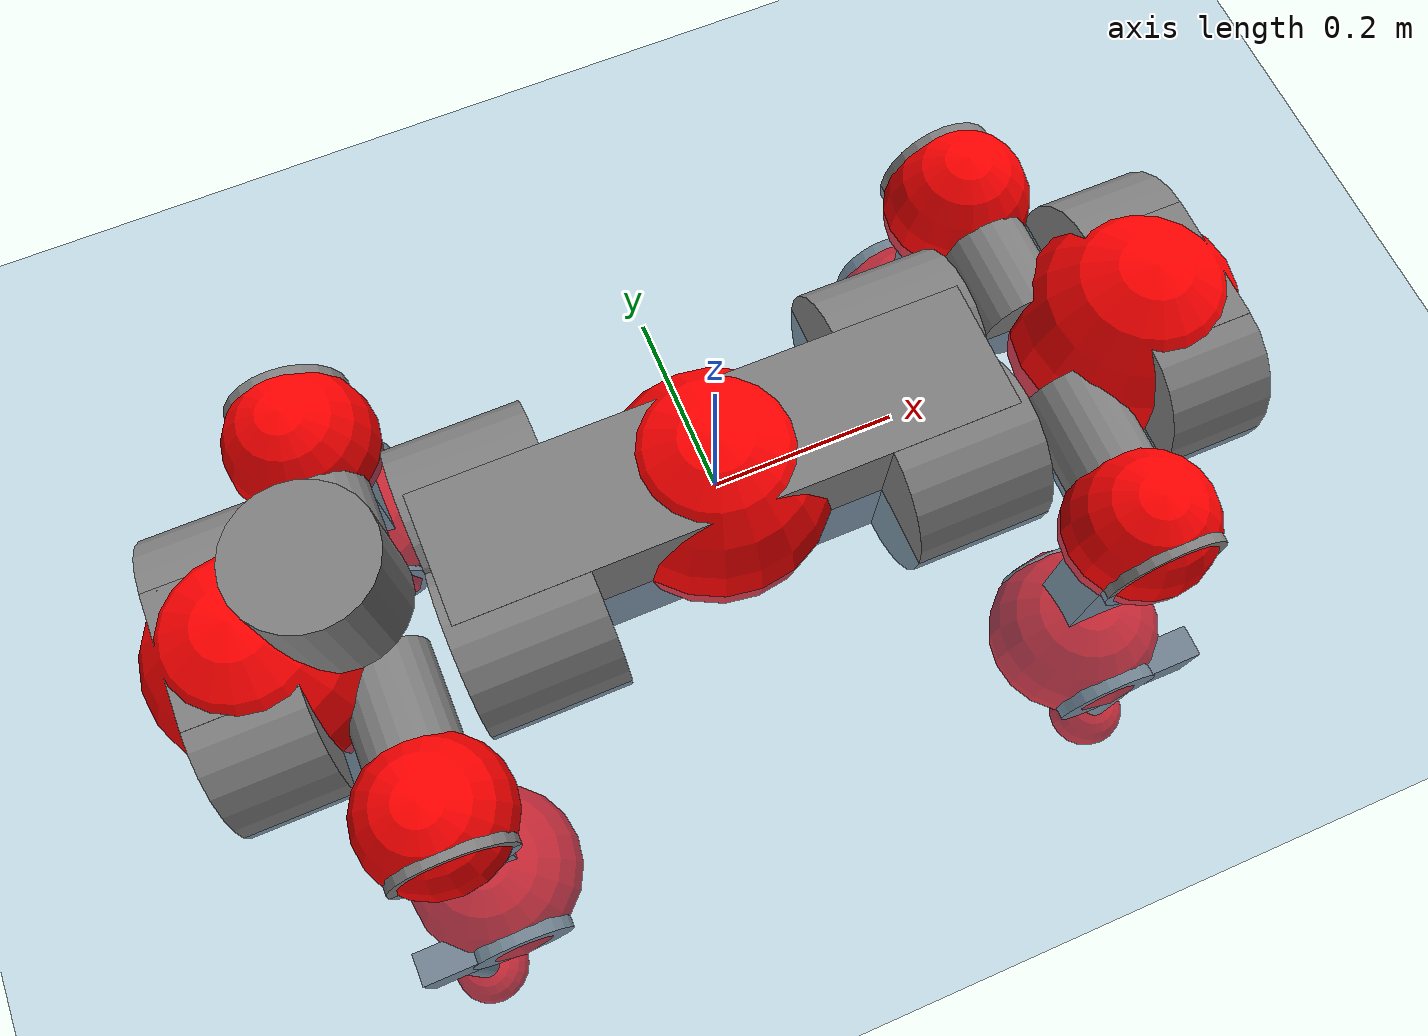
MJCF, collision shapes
<mujoco model="anymal_c">
  <compiler angle="radian" assetdir="assets" balanceinertia="true" inertiafromgeom="false"/>

  <option timestep="0.005" density="1.2" viscosity="2e-05"/>

  <size nkey="1"/>

  <visual>
    <quality shadowsize="8192"/>
    <map shadowclip="0.5"/>
  </visual>

  <default>
    <default class="/">
      <material specular="0" shininess="0.25"/>
      <geom contype="0" conaffinity="0" group="1" solref="-1000 -80"/>
      <site size="0.01 0.005 0.005" group="5"/>
      <general forcelimited="true" forcerange="-80 80" biastype="affine" gainprm="80" biasprm="0 -80 -2"/>
      <default class="anymal_c">
        <joint armature="0.01" damping="0.01" frictionloss="0.1"/>
        <default class="visual">
          <geom type="mesh" group="2"/>
          <default class="visual_zflip"/>
        </default>
        <default class="collision">
          <geom type="cylinder" group="3"/>
          <default class="foot">
            <geom size="0.03 0 0" type="sphere" condim="6" priority="1" friction="0.8 0.02 0.01" solimp="0.015 1 0.03"/>
          </default>
        </default>
      </default>
      <default class="reward_collision_sphere">
        <geom group="5" rgba="1 0 0 1"/>
      </default>
    </default>
  </default>

  <asset>
    <texture type="skybox" colorspace="auto" name="//unnamed_texture_0" builtin="gradient" rgb1="0.95 0.95 0.95" rgb2="0.95 0.95 0.95" width="100" height="600"/>
    <texture type="2d" colorspace="auto" name="texplane" builtin="checker" rgb1="0.345 0.575 0.748" rgb2="0.345 0.575 0.748" markrgb="1 1 1" width="512" height="512"/>
    <texture type="2d" colorspace="linear" name="base" file="base.png"/>
    <texture type="2d" colorspace="linear" name="top_shell" file="top_shell.png"/>
    <texture type="2d" colorspace="linear" name="bottom_shell" file="bottom_shell.png"/>
    <texture type="2d" colorspace="linear" name="remote" file="remote.png"/>
    <texture type="2d" colorspace="linear" name="hatch" file="hatch.png"/>
    <texture type="2d" colorspace="linear" name="handle" file="handle.png"/>
    <texture type="2d" colorspace="linear" name="face" file="face.png"/>
    <texture type="2d" colorspace="linear" name="battery" file="battery.png"/>
    <texture type="2d" colorspace="linear" name="lidar_cage" file="lidar_cage.png"/>
    <texture type="2d" colorspace="linear" name="depth_camera" file="depth_camera.png"/>
    <texture type="2d" colorspace="linear" name="wide_angle_camera" file="wide_angle_camera.png"/>
    <texture type="2d" colorspace="linear" name="lidar" file="lidar.png"/>
    <texture type="2d" colorspace="linear" name="drive" file="drive.png"/>
    <texture type="2d" colorspace="linear" name="hip_l" file="hip_l.png"/>
    <texture type="2d" colorspace="linear" name="shank_l" file="shank_l.png"/>
    <texture type="2d" colorspace="linear" name="foot" file="foot.png"/>
    <texture type="2d" colorspace="linear" name="thigh" file="thigh.png"/>
    <texture type="2d" colorspace="linear" name="shank_r" file="shank_r.png"/>
    <texture type="2d" colorspace="linear" name="hip_r" file="hip_r.png"/>
    <material name="MatPlane" class="/" texture="texplane" texuniform="true" texrepeat="2 2" specular="0.9" shininess="0.5"/>
    <material name="black_plastic" class="/" rgba="0.007 0.007 0.007 1"/>
    <material name="green" class="/" rgba="0.052 0.178 0.033 1"/>
    <material name="red" class="/" rgba="0.178 0.006 0.005 1"/>
    <material name="yellow" class="/" rgba="0.178 0.119 0.006 1"/>
    <material name="lwl" class="/" rgba="0.8 0.8 0.8 1"/>
    <material name="base" class="/" texture="base"/>
    <material name="top_shell" class="/" texture="top_shell"/>
    <material name="bottom_shell" class="/" texture="bottom_shell"/>
    <material name="hip_l" class="/" texture="hip_l"/>
    <material name="thigh" class="/" texture="thigh"/>
    <material name="shank_l" class="/" texture="shank_l"/>
    <material name="foot" class="/" texture="foot"/>
    <material name="hip_r" class="/" texture="hip_r"/>
    <material name="shank" class="/" texture="shank_r"/>
    <material name="hatch" class="/" texture="hatch"/>
    <material name="remote" class="/" texture="remote"/>
    <material name="handle" class="/" texture="handle"/>
    <material name="face" class="/" texture="face"/>
    <material name="depth_camera" class="/" texture="depth_camera"/>
    <material name="wide_angle_camera" class="/" texture="wide_angle_camera"/>
    <material name="battery" class="/" texture="battery"/>
    <material name="lidar_cage" class="/" texture="lidar_cage"/>
    <material name="lidar" class="/" texture="lidar"/>
    <material name="drive" class="/" texture="drive"/>
    <mesh name="base_0" class="/" file="base_0.obj"/>
    <mesh name="base_1" class="/" file="base_1.obj"/>
    <mesh name="base_2" class="/" file="base_2.obj"/>
    <mesh name="base_3" class="/" file="base_3.obj"/>
    <mesh name="base_4" class="/" file="base_4.obj"/>
    <mesh name="base_5" class="/" file="base_5.obj"/>
    <mesh name="top_shell" class="/" file="top_shell.obj"/>
    <mesh name="bottom_shell" class="/" file="bottom_shell.obj"/>
    <mesh name="remote" class="/" file="remote.obj"/>
    <mesh name="handle" class="/" file="handle.obj"/>
    <mesh name="face" class="/" file="face.obj"/>
    <mesh name="wide_angle_camera" class="/" file="wide_angle_camera.obj"/>
    <mesh name="depth_camera" class="/" file="depth_camera.obj"/>
    <mesh name="battery" class="/" file="battery.obj"/>
    <mesh name="lidar_cage" class="/" file="lidar_cage.obj"/>
    <mesh name="lidar" class="/" file="lidar.obj"/>
    <mesh name="drive" class="/" file="drive.obj"/>
    <mesh name="hip_l" class="/" file="hip_l.obj"/>
    <mesh name="thigh" class="/" file="thigh.obj"/>
    <mesh name="shank_l" class="/" file="shank_l.obj"/>
    <mesh name="foot" class="/" file="foot.obj"/>
    <mesh name="hip_r" class="/" file="hip_r.obj"/>
    <mesh name="hatch" class="/" file="hatch.obj"/>
    <mesh name="shank_r" class="/" file="shank_r.obj"/>
  </asset>

  <worldbody>
    <geom name="floor" class="/" size="100 100 0.125" type="plane" group="0" material="MatPlane"/>
    <light name="toplight_shadow" class="/" pos="0 0 5" dir="0.0990148 0.0990148 -0.990148" type="directional" ambient="0.04 0.04 0.04" diffuse="0.55 0.55 0.55" specular="0.12 0.12 0.12"/>
    <light name="toplight_fill" class="/" pos="0 0 5" dir="0.0990148 0.0990148 -0.990148" type="directional" castshadow="false" ambient="0.04 0.04 0.04" diffuse="0.3 0.3 0.3" specular="0.08 0.08 0.08"/>
    <body name="trunk" childclass="anymal_c" pos="0.00016027 -0.00021494 -0.00247629" quat="0.999999 -7.72525e-05 0.00109144 0.000334783">
      <inertial pos="0.00299516 0.0014681 0.0514295" quat="0.501688 0.490594 0.503095 0.504502" mass="20.665" diaginertia="0.888765 0.577048 0.2517"/>
      <joint name="//unnamed_joint_0" type="free" armature="0" damping="0" frictionloss="0"/>
      <geom name="//unnamed_geom_1" class="visual" material="green" mesh="base_0"/>
      <geom name="//unnamed_geom_2" class="visual" material="yellow" mesh="base_1"/>
      <geom name="//unnamed_geom_3" class="visual" material="red" mesh="base_2"/>
      <geom name="//unnamed_geom_4" class="visual" material="black_plastic" mesh="base_3"/>
      <geom name="//unnamed_geom_5" class="visual" material="lwl" mesh="base_4"/>
      <geom name="//unnamed_geom_6" class="visual" material="base" mesh="base_5"/>
      <geom name="trunk_1" class="collision" size="0.295965 0.0714398 0.0918512" type="box"/>
      <geom name="trunk_2" class="collision" size="0.0918512 0.0739912" pos="0.230977 0.0683956 0" quat="0.707107 0 0.707107 0"/>
      <geom name="trunk_3" class="collision" size="0.0918512 0.0739912" pos="-0.230977 0.0683956 0" quat="0.707107 0 0.707107 0"/>
      <geom name="trunk_4" class="collision" size="0.0918512 0.0739912" pos="0.230977 -0.0683956 0" quat="0.707107 0 0.707107 0"/>
      <geom name="trunk_5" class="collision" size="0.0918512 0.0739912" pos="-0.230977 -0.0683956 0" quat="0.707107 0 0.707107 0"/>
      <geom name="//unnamed_geom_12" class="visual" material="top_shell" mesh="top_shell"/>
      <geom name="//unnamed_geom_13" class="visual" material="bottom_shell" mesh="bottom_shell"/>
      <geom name="//unnamed_geom_14" class="visual" material="remote" mesh="remote"/>
      <geom name="//unnamed_geom_15" class="visual" material="handle" mesh="handle"/>
      <geom name="//unnamed_geom_16" class="visual" pos="0.440183 0 0" quat="1 0 0 0" material="face" mesh="face"/>
      <geom name="trunk_6" class="collision" size="0.0561313 0.0714398 0.0918512" pos="0.498591 0 0" type="box"/>
      <geom name="//unnamed_geom_18" class="collision" size="0.0918512 0.0561313" pos="0.498591 0.0683956 0" quat="0.707107 0 0.707107 0"/>
      <geom name="//unnamed_geom_19" class="collision" size="0.0918512 0.0561313" pos="0.498591 -0.0683956 0" quat="0.707107 0 0.707107 0"/>
      <geom name="//unnamed_geom_20" class="visual" pos="0.490253 0 -0.0295631" quat="0.965926 0 0.258819 0" material="depth_camera" mesh="depth_camera"/>
      <geom name="//unnamed_geom_21" class="visual" pos="0.544787 0 0.0153093" material="wide_angle_camera" mesh="wide_angle_camera"/>
      <geom name="//unnamed_geom_22" class="visual_zflip" pos="-0.440183 0 0" quat="0 0 0 1" material="face" mesh="face"/>
      <geom name="trunk_7" class="collision" size="0.0561313 0.0714398 0.0918512" pos="-0.498591 0 0" quat="0 0 0 1" type="box"/>
      <geom name="//unnamed_geom_24" class="collision" size="0.0918512 0.0561313" pos="-0.498591 -0.0683956 0" quat="0 -0.707107 0 0.707107"/>
      <geom name="//unnamed_geom_25" class="collision" size="0.0918512 0.0561313" pos="-0.498591 0.0683956 0" quat="0 -0.707107 0 0.707107"/>
      <geom name="//unnamed_geom_26" class="visual" pos="-0.490253 0 -0.0295631" quat="0 -0.258819 0 0.965926" material="depth_camera" mesh="depth_camera"/>
      <geom name="//unnamed_geom_27" class="visual_zflip" pos="-0.544787 0 0.0153093" quat="0 0 0 1" material="wide_angle_camera" mesh="wide_angle_camera"/>
      <geom name="//unnamed_geom_28" class="visual" material="battery" mesh="battery"/>
      <geom name="//unnamed_geom_29" class="visual" pos="0 0.073592 0.030007" quat="0.683013 -0.183013 0.183013 0.683013" material="depth_camera" mesh="depth_camera"/>
      <geom name="//unnamed_geom_30" class="visual" pos="0 -0.073592 0.030007" quat="0.683013 0.183013 0.183013 -0.683013" material="depth_camera" mesh="depth_camera"/>
      <geom name="//unnamed_geom_31" class="visual" pos="-0.386554 0 0.0751658" quat="1 0 0 0" material="lidar_cage" mesh="lidar_cage"/>
      <geom name="trunk_8" class="collision" size="0.0714398 0.0612341" pos="-0.386554 0 0.136526"/>
      <geom name="//unnamed_geom_33" class="visual" pos="-0.386554 -3.33483e-05 0.145423" quat="0.707107 0 0 -0.707107" material="lidar" mesh="lidar"/>
      <geom name="//unnamed_geom_34" class="visual" pos="0.318483 0.101632 -7.86328e-10" quat="0.258819 0.965926 0 0" material="drive" mesh="drive"/>
      <geom name="//unnamed_geom_35" class="visual" pos="0.318483 -0.101632 7.86328e-10" quat="0.258819 -0.965926 0 0" material="drive" mesh="drive"/>
      <geom name="//unnamed_geom_36" class="visual" pos="-0.318483 0.101632 7.86328e-10" quat="0 0 0.965926 -0.258819" material="drive" mesh="drive"/>
      <geom name="//unnamed_geom_37" class="visual" pos="-0.318483 -0.101632 -7.86328e-10" quat="0 0 -0.965926 -0.258819" material="drive" mesh="drive"/>
      <geom name="//unnamed_geom_38" class="visual" pos="0.123188 0 0.0746544" quat="1 0 0 0" material="hatch" mesh="hatch"/>
      <geom name="//unnamed_geom_39" class="reward_collision_sphere" size="0.122468"/>
      <geom name="//unnamed_geom_40" class="reward_collision_sphere" size="0.122468" pos="0.477883 0 0"/>
      <geom name="//unnamed_geom_41" class="reward_collision_sphere" size="0.122468" pos="-0.477883 0 0"/>
      <site name="imu" pos="0.261605 0.00903059 0.0400543" size="0.0102057"/>
      <camera name="track" pos="0 -1.95416 0" quat="0.707107 0.707107 0 0" mode="trackcom"/>
      <camera name="ego_camera" pos="0.477883 0 -0.0409065" quat="-0.5 -0.5 0.5 0.5"/>
      <body name="LF_HIP" pos="0.318567 0.101131 0.00130139" quat="0.258779 0.965937 -7.16167e-05 3.49368e-06">
        <inertial pos="0.0580818 -0.0150671 -0.0107293" quat="-0.132135 0.709477 -0.123951 0.681043" mass="2.95427" diaginertia="0.00801716 0.00443104 0.00367105"/>
        <joint name="LF_HAA" pos="0 0 0" axis="0.999977 -0.00674434 -0.000365014" range="-0.712827 0.485767" armature="0.0102816" damping="0.00437749" frictionloss="0.101144"/>
        <geom name="//unnamed_geom_42" class="visual" pos="0 -4.62561e-05 7.59753e-06" quat="0.258819 -0.965926 0 0" material="hip_l" mesh="hip_l"/>
        <geom name="//unnamed_geom_43" class="visual" pos="0.0636116 -0.0759775 -0.0442028" quat="0.183013 -0.683013 0.683013 0.183013" material="drive" mesh="drive"/>
        <geom name="//unnamed_geom_44" class="collision" size="0.0510284 0.0714398" pos="0.0636116 -0.0116857 -0.00706149" quat="-0.353553 -0.612372 0.612372 -0.353553"/>
        <body name="LF_THIGH" pos="0.0624912 -0.0708934 -0.0412863" quat="0.183122 -0.683035 0.682985 0.182921">
          <inertial pos="0.0329609 -0.000267281 -0.251656" quat="0.992578 -0.00370597 -0.0836896 0.0881542" mass="3.15052" diaginertia="0.039526 0.0259859 0.00447241"/>
          <joint name="LF_HFE" pos="0 0 0" axis="0.999998 -0.00160135 -0.000949666" stiffness="0.00441553" range="-3.14578 3.13793" armature="0.00969381" damping="0.0131727" frictionloss="0.101831"/>
          <geom name="//unnamed_geom_45" class="visual" pos="0.00168884 2.66121e-06 0" quat="0.707107 0 0 -0.707107" material="thigh" mesh="thigh"/>
          <geom name="//unnamed_geom_46" class="collision" size="0.0663369 0.0408227" pos="0.0424785 0 0" quat="0.5 0.5 -0.5 -0.5"/>
          <geom name="//unnamed_geom_47" class="collision" size="0.0382713 0.0306171 0.144221" pos="0.0318589 0 -0.144517" quat="0.707107 0 0 -0.707107" type="box"/>
          <geom name="//unnamed_geom_48" class="visual" pos="0.106515 0 -0.291459" quat="1 0 0 0" material="drive" mesh="drive"/>
          <geom name="//unnamed_geom_49" class="collision" size="0.0510284 0.0714398" pos="0.0321775 0 -0.291459" quat="0.707107 0 0.707107 0"/>
          <geom name="//unnamed_geom_50" class="reward_collision_sphere" size="0.0816455" pos="0.0265491 0 0"/>
          <body name="LF_SHANK" pos="0.1055 -0.000491823 -0.292003" quat="1 2.7095e-05 4.60511e-06 1.65167e-05">
            <inertial pos="0.00321108 -0.0621714 -0.082361" quat="0.992731 -0.117312 -0.00199979 -0.0268245" mass="0.620682" diaginertia="0.0132992 0.00824232 0.00125163"/>
            <joint name="LF_KFE" pos="0 0 0" axis="0.999998 -0.00204558 -0.000377062" range="-3.19123 3.14187" armature="0.0105296" damping="0.0127053" frictionloss="0.114904"/>
            <geom name="//unnamed_geom_51" class="visual" pos="0.000550693 0.00293633 0" quat="0.707107 0 0 -0.707107" material="shank_l" mesh="shank_l"/>
            <geom name="LF_kfe_act" class="collision" size="0.0612341 0.0204114" pos="0.0212392 0 0" quat="0.5 0.5 -0.5 -0.5"/>
            <geom name="//unnamed_geom_53" class="collision" size="0.0586817 0.0344442 0.0193908" pos="0.0212392 -0.0561811 0" quat="0.5 0.5 -0.5 -0.5" type="box"/>
            <geom name="//unnamed_geom_54" class="visual" pos="0.0138585 -0.0849879 -0.34563" quat="0.382683 0 0 -0.92388" material="foot" mesh="foot"/>
            <geom name="LF_calf" class="collision" size="0.0178599 0.144157" pos="0.0138586 -0.0859341 -0.172815" quat="0.707107 0 0 -0.707107"/>
            <geom name="LF_foot" class="foot" size="0.0303921" pos="0.0138586 -0.0859341 -0.32262" quat="0.707107 0 0 -0.707107"/>
            <geom name="//unnamed_geom_57" class="reward_collision_sphere" size="0.102057" pos="-0.0530981 0 0"/>
            <geom name="//unnamed_geom_58" class="reward_collision_sphere" size="0.0510284" pos="0.0138586 -0.0859341 -0.32262"/>
            <site name="LF_foot" class="foot" pos="0.0138586 -0.0859341 -0.32262" quat="0.707107 0 0 -0.707107" size="0.0102057"/>
          </body>
        </body>
      </body>
      <body name="RF_HIP" pos="0.319235 -0.102478 0.000787352" quat="0.259527 -0.965735 0.000905893 -0.000104986">
        <inertial pos="0.0612103 0.0151823 -0.00819556" quat="0.124553 0.680229 0.121864 0.711986" mass="3.08795" diaginertia="0.0079779 0.0044429 0.0037289"/>
        <joint name="RF_HAA" pos="0 0 0" axis="0.999998 -0.000378111 0.00209395" range="-0.542577 0.726157" armature="0.00976653" damping="0.00980203" frictionloss="0.105064"/>
        <geom name="//unnamed_geom_59" class="visual" pos="0 4.62557e-05 7.59751e-06" quat="0.258819 0.965926 0 0" material="hip_r" mesh="hip_r"/>
        <geom name="//unnamed_geom_60" class="visual" pos="0.0636116 0.0759775 -0.0442028" quat="0.183013 0.683013 0.683013 -0.183013" material="drive" mesh="drive"/>
        <geom name="//unnamed_geom_61" class="collision" size="0.0510284 0.0714398" pos="0.0636116 0.0116857 -0.00706149" quat="-0.353553 0.612372 0.612372 0.353553"/>
        <body name="RF_THIGH" pos="0.063804 0.0703331 -0.042599" quat="0.183088 0.683205 0.682843 -0.182854">
          <inertial pos="0.0333247 -0.000396445 -0.25017" quat="0.992168 -0.00601972 -0.0832992 0.0928838" mass="3.31877" diaginertia="0.0410059 0.0260672 0.00463893"/>
          <joint name="RF_HFE" pos="0 0 0" axis="0.999998 0.00136577 0.00142057" stiffness="0.0108502" range="-3.14346 3.13667" armature="0.0105814" damping="0" frictionloss="0.0943335"/>
          <geom name="//unnamed_geom_62" class="visual" pos="0.00168884 2.66121e-06 0" quat="0.707107 0 0 -0.707107" material="thigh" mesh="thigh"/>
          <geom name="//unnamed_geom_63" class="collision" size="0.0663369 0.0408227" pos="0.0424785 0 0" quat="0.5 0.5 0.5 0.5"/>
          <geom name="//unnamed_geom_64" class="collision" size="0.0382713 0.0306171 0.144221" pos="0.0318589 0 -0.144517" quat="0.707107 0 0 0.707107" type="box"/>
          <geom name="//unnamed_geom_65" class="visual" pos="0.106515 0 -0.291459" quat="1 0 0 0" material="drive" mesh="drive"/>
          <geom name="//unnamed_geom_66" class="collision" size="0.0510284 0.0714398" pos="0.0321775 0 -0.291459" quat="0.707107 0 0.707107 0"/>
          <geom name="//unnamed_geom_67" class="reward_collision_sphere" size="0.0816455" pos="0.0265491 0 0"/>
          <body name="RF_SHANK" pos="0.103798 -0.000447176 -0.291816" quat="1 0.000321519 -8.50491e-05 -9.10406e-05">
            <inertial pos="0.00678798 0.0576957 -0.0807091" quat="0.994232 0.104844 -0.00603344 0.0217705" mass="0.609575" diaginertia="0.0132541 0.00819847 0.00120934"/>
            <joint name="RF_KFE" pos="0 0 0" axis="0.999999 -0.000826064 0.000871091" range="-3.13524 3.13434" armature="0.0102578" damping="0" frictionloss="0.104068"/>
            <geom name="//unnamed_geom_68" class="visual" pos="0.00055069 -0.00293632 0" quat="0.707107 0 0 0.707107" material="shank" mesh="shank_r"/>
            <geom name="RF_kfe_act" class="collision" size="0.0612341 0.0204114" pos="0.0212392 0 0" quat="0.5 0.5 0.5 0.5"/>
            <geom name="//unnamed_geom_70" class="collision" size="0.0586817 0.0344442 0.0193908" pos="0.0212392 0.0561811 0" quat="0.5 0.5 0.5 0.5" type="box"/>
            <geom name="//unnamed_geom_71" class="visual" pos="0.0138587 0.0849879 -0.34563" quat="0.382683 0 0 0.92388" material="foot" mesh="foot"/>
            <geom name="RF_calf" class="collision" size="0.0178599 0.144157" pos="0.0138586 0.0859341 -0.172815" quat="0.707107 0 0 0.707107"/>
            <geom name="RF_foot" class="foot" size="0.0289338" pos="0.0138586 0.0859341 -0.32262" quat="0.707107 0 0 0.707107"/>
            <geom name="//unnamed_geom_74" class="reward_collision_sphere" size="0.102057" pos="-0.0530981 0 0"/>
            <geom name="//unnamed_geom_75" class="reward_collision_sphere" size="0.0510284" pos="0.0138586 0.0859341 -0.32262"/>
            <site name="RF_foot" class="foot" pos="0.0138586 0.0859341 -0.32262" quat="0.707107 0 0 0.707107" size="0.0102057"/>
          </body>
        </body>
      </body>
      <body name="LH_HIP" pos="-0.317875 0.101127 0.00186095" quat="0.000115642 -0.000506865 0.966019 -0.258471">
        <inertial pos="0.0613625 0.0125053 -0.0110679" quat="0.132628 0.681696 0.126342 0.708335" mass="2.93756" diaginertia="0.0079416 0.0043269 0.00360985"/>
        <joint name="LH_HAA" pos="0 0 0" axis="0.999931 -0.00103727 -0.0116626" stiffness="0.000715292" range="-0.535004 0.767894" armature="0.0111686" damping="0.0131337" frictionloss="0.101205"/>
        <geom name="//unnamed_geom_76" class="visual" pos="0 4.62557e-05 7.59751e-06" quat="-0.258819 -0.965926 0 0" material="hip_r" mesh="hip_r"/>
        <geom name="//unnamed_geom_77" class="visual" pos="0.0636116 0.0759775 -0.0442028" quat="0.183013 0.683013 0.683013 -0.183013" material="drive" mesh="drive"/>
        <geom name="//unnamed_geom_78" class="collision" size="0.0510284 0.0714398" pos="0.0636116 0.0116857 -0.00706149" quat="-0.353553 0.612372 0.612372 0.353553"/>
        <body name="LH_THIGH" pos="0.0630652 0.0692393 -0.0409348" quat="0.18331 0.683495 0.682534 -0.182702">
          <inertial pos="0.0353438 -0.00133385 -0.253556" quat="0.992793 -0.00517134 -0.0803594 0.0887588" mass="3.34883" diaginertia="0.0433743 0.0274587 0.00488246"/>
          <joint name="LH_HFE" pos="0 0 0" axis="0.999913 0.0114844 0.00651989" range="-3.1555 3.14782" armature="0.0104702" damping="0" frictionloss="0.0989969"/>
          <geom name="//unnamed_geom_79" class="visual" pos="0.00168884 2.66121e-06 0" quat="0.707107 0 0 -0.707107" material="thigh" mesh="thigh"/>
          <geom name="//unnamed_geom_80" class="collision" size="0.0663369 0.0408227" pos="0.0424785 0 0" quat="0.5 0.5 -0.5 -0.5"/>
          <geom name="//unnamed_geom_81" class="collision" size="0.0382713 0.0306171 0.144221" pos="0.0318589 0 -0.144517" quat="0.707107 0 0 -0.707107" type="box"/>
          <geom name="//unnamed_geom_82" class="visual" pos="0.106515 0 -0.291459" quat="1 0 0 0" material="drive" mesh="drive"/>
          <geom name="//unnamed_geom_83" class="collision" size="0.0510284 0.0714398" pos="0.0321775 0 -0.291459" quat="0.707107 0 0.707107 0"/>
          <geom name="//unnamed_geom_84" class="reward_collision_sphere" size="0.0816455" pos="0.0265491 0 0"/>
          <body name="LH_SHANK" pos="0.106224 0.000405661 -0.293416" quat="1 -4.98878e-05 -0.000471125 0.000800065">
            <inertial pos="0.0033813 0.0604103 -0.0849621" quat="0.991915 0.124454 -0.00742475 0.0236573" mass="0.621056" diaginertia="0.0135857 0.00814772 0.00122458"/>
            <joint name="LH_KFE" pos="0 0 0" axis="0.999991 -0.000453043 -0.00414924" stiffness="0.00131338" range="-3.1455 3.0891" armature="0.0113518" damping="0" frictionloss="0.101352"/>
            <geom name="//unnamed_geom_85" class="visual" pos="0.00055069 -0.00293632 0" quat="-0.707107 0 0 -0.707107" material="shank" mesh="shank_r"/>
            <geom name="LH_kfe_act" class="collision" size="0.0612341 0.0204114" pos="0.0212392 0 0" quat="0.5 0.5 -0.5 -0.5"/>
            <geom name="//unnamed_geom_87" class="collision" size="0.0586817 0.0344442 0.0193908" pos="0.0212392 0.0561811 0" quat="0.5 0.5 -0.5 -0.5" type="box"/>
            <geom name="//unnamed_geom_88" class="visual" pos="0.0138587 0.0849879 -0.34563" quat="-0.382683 0 0 -0.92388" material="foot" mesh="foot"/>
            <geom name="LH_calf" class="collision" size="0.0178599 0.144157" pos="0.0138586 0.0859341 -0.172815" quat="0.707107 0 0 -0.707107"/>
            <geom name="LH_foot" class="foot" size="0.0310759" pos="0.0138586 0.0859341 -0.32262" quat="0.707107 0 0 -0.707107"/>
            <geom name="//unnamed_geom_91" class="reward_collision_sphere" size="0.102057" pos="-0.0530981 0 0"/>
            <geom name="//unnamed_geom_92" class="reward_collision_sphere" size="0.0510284" pos="0.0138586 0.0859341 -0.32262"/>
            <site name="LH_foot" class="foot" pos="0.0138586 0.0859341 -0.32262" quat="0.707107 0 0 -0.707107" size="0.0102057"/>
          </body>
        </body>
      </body>
      <body name="RH_HIP" pos="-0.315833 -0.101681 0.00243725" quat="1.75495e-05 0.00013974 -0.965907 -0.258889">
        <inertial pos="0.0585586 -0.0153393 -0.00869371" quat="-0.134279 0.713905 -0.12825 0.675175" mass="2.94941" diaginertia="0.00839562 0.00451322 0.00378734"/>
        <joint name="RH_HAA" pos="0 0 0" axis="0.999906 0.0132117 -0.00368015" range="-0.71414 0.489326" armature="0.0102463" damping="0.0113753" frictionloss="0.115134"/>
        <geom name="//unnamed_geom_93" class="visual" pos="0 -4.62561e-05 7.59753e-06" quat="-0.258819 0.965926 0 0" material="hip_l" mesh="hip_l"/>
        <geom name="//unnamed_geom_94" class="visual" pos="0.0636116 -0.0759775 -0.0442028" quat="-0.183013 0.683013 -0.683013 -0.183013" material="drive" mesh="drive"/>
        <geom name="//unnamed_geom_95" class="collision" size="0.0510284 0.0714398" pos="0.0636116 -0.0116857 -0.00706149" quat="0.353553 0.612372 -0.612372 0.353553"/>
        <body name="RH_THIGH" pos="0.0631689 -0.0708147 -0.0435849" quat="-0.183069 0.683139 -0.682881 -0.18298">
          <inertial pos="0.0322153 0.000102491 -0.253117" quat="0.993294 -0.00249398 -0.0813298 0.0821301" mass="3.20156" diaginertia="0.0423845 0.0270809 0.00469204"/>
          <joint name="RH_HFE" pos="0 0 0" axis="0.999998 0.00211773 0.00018352" stiffness="0.00136535" range="-3.145 3.11719" armature="0.0100611" damping="0.0117727" frictionloss="0.10707"/>
          <geom name="//unnamed_geom_96" class="visual" pos="0.00168884 2.66121e-06 0" quat="0.707107 0 0 -0.707107" material="thigh" mesh="thigh"/>
          <geom name="//unnamed_geom_97" class="collision" size="0.0663369 0.0408227" pos="0.0424785 0 0" quat="0.5 0.5 0.5 0.5"/>
          <geom name="//unnamed_geom_98" class="collision" size="0.0382713 0.0306171 0.144221" pos="0.0318589 0 -0.144517" quat="0.707107 0 0 0.707107" type="box"/>
          <geom name="//unnamed_geom_99" class="visual" pos="0.106515 0 -0.291459" quat="1 0 0 0" material="drive" mesh="drive"/>
          <geom name="//unnamed_geom_100" class="collision" size="0.0510284 0.0714398" pos="0.0321775 0 -0.291459" quat="0.707107 0 0.707107 0"/>
          <geom name="//unnamed_geom_101" class="reward_collision_sphere" size="0.0816455" pos="0.0265491 0 0"/>
          <body name="RH_SHANK" pos="0.103938 0.00172306 -0.292743" quat="0.999999 -0.000581475 0.000168034 0.00110077">
            <inertial pos="0.00483517 -0.059552 -0.0822835" quat="0.993166 -0.115814 -0.00116648 -0.0143603" mass="0.632359" diaginertia="0.0138243 0.00824214 0.00122087"/>
            <joint name="RH_KFE" pos="0 0 0" axis="0.999885 0.00577099 0.0140312" range="-3.08361 3.15326" armature="0.010045" damping="0" frictionloss="0.107189"/>
            <geom name="//unnamed_geom_102" class="visual" pos="0.000550693 0.00293633 0" quat="0.707107 0 0 -0.707107" material="shank_l" mesh="shank_l"/>
            <geom name="RH_kfe_act" class="collision" size="0.0612341 0.0204114" pos="0.0212392 0 0" quat="0.5 0.5 0.5 0.5"/>
            <geom name="//unnamed_geom_104" class="collision" size="0.0586817 0.0344442 0.0193908" pos="0.0212392 -0.0561811 0" quat="0.5 0.5 0.5 0.5" type="box"/>
            <geom name="//unnamed_geom_105" class="visual" pos="0.0138585 -0.0849879 -0.34563" quat="0.382683 0 0 -0.92388" material="foot" mesh="foot"/>
            <geom name="RH_calf" class="collision" size="0.0178599 0.144157" pos="0.0138586 -0.0859341 -0.172815" quat="0.707107 0 0 0.707107"/>
            <geom name="RH_foot" class="foot" size="0.0310229" pos="0.0138586 -0.0859341 -0.32262" quat="0.707107 0 0 0.707107"/>
            <geom name="//unnamed_geom_108" class="reward_collision_sphere" size="0.102057" pos="-0.0530981 0 0"/>
            <geom name="//unnamed_geom_109" class="reward_collision_sphere" size="0.0510284" pos="0.0138586 -0.0859341 -0.32262"/>
            <site name="RH_foot" class="foot" pos="0.0138586 -0.0859341 -0.32262" quat="0.707107 0 0 0.707107" size="0.0102057"/>
          </body>
        </body>
      </body>
    </body>
  </worldbody>

  <contact>
    <pair class="/" geom1="floor" geom2="LF_foot" name="//unnamed_contact_0"/>
    <pair class="/" geom1="floor" geom2="RF_foot" name="//unnamed_contact_1"/>
    <pair class="/" geom1="floor" geom2="LH_foot" name="//unnamed_contact_2"/>
    <pair class="/" geom1="floor" geom2="RH_foot" name="//unnamed_contact_3"/>
  </contact>

  <actuator>
    <general name="LF_HAA" class="/" joint="LF_HAA" forcerange="-83.3127 83.3127" gainprm="82.6885" biasprm="0 -82.6885 -1.95314"/>
    <general name="LF_HFE" class="/" joint="LF_HFE" forcerange="-79.4357 79.4357" gainprm="82.6885" biasprm="0 -82.6885 -1.95314"/>
    <general name="LF_KFE" class="/" joint="LF_KFE" forcerange="-82.6122 82.6122" gainprm="82.6885" biasprm="0 -82.6885 -1.95314"/>
    <general name="RF_HAA" class="/" joint="RF_HAA" forcerange="-82.6602 82.6602" gainprm="82.6885" biasprm="0 -82.6885 -1.95314"/>
    <general name="RF_HFE" class="/" joint="RF_HFE" forcerange="-83.5575 83.5575" gainprm="82.6885" biasprm="0 -82.6885 -1.95314"/>
    <general name="RF_KFE" class="/" joint="RF_KFE" forcerange="-82.9505 82.9505" gainprm="82.6885" biasprm="0 -82.6885 -1.95314"/>
    <general name="LH_HAA" class="/" joint="LH_HAA" forcerange="-82.9382 82.9382" gainprm="82.6885" biasprm="0 -82.6885 -1.95314"/>
    <general name="LH_HFE" class="/" joint="LH_HFE" forcerange="-74.633 74.633" gainprm="82.6885" biasprm="0 -82.6885 -1.95314"/>
    <general name="LH_KFE" class="/" joint="LH_KFE" forcerange="-89.2398 89.2398" gainprm="82.6885" biasprm="0 -82.6885 -1.95314"/>
    <general name="RH_HAA" class="/" joint="RH_HAA" forcerange="-81.898 81.898" gainprm="82.6885" biasprm="0 -82.6885 -1.95314"/>
    <general name="RH_HFE" class="/" joint="RH_HFE" forcerange="-84.7989 84.7989" gainprm="82.6885" biasprm="0 -82.6885 -1.95314"/>
    <general name="RH_KFE" class="/" joint="RH_KFE" forcerange="-82.6915 82.6915" gainprm="82.6885" biasprm="0 -82.6885 -1.95314"/>
  </actuator>

  <sensor>
    <gyro site="imu" name="imu_angular_velocity"/>
    <velocimeter site="imu" name="imu_linear_velocity"/>
    <framelinvel objtype="site" objname="LF_foot" name="LF_foot_global_linear_velocity"/>
    <framelinvel objtype="site" objname="RF_foot" name="RF_foot_global_linear_velocity"/>
    <framelinvel objtype="site" objname="LH_foot" name="LH_foot_global_linear_velocity"/>
    <framelinvel objtype="site" objname="RH_foot" name="RH_foot_global_linear_velocity"/>
  </sensor>

  <keyframe>
    <key name="home" qpos="0 0 0.55 1 0 0 0 0 0.4 -0.8 0 -0.4 0.8 0 -0.4 0.8 0 0.4 -0.8"/>
  </keyframe>
</mujoco>
